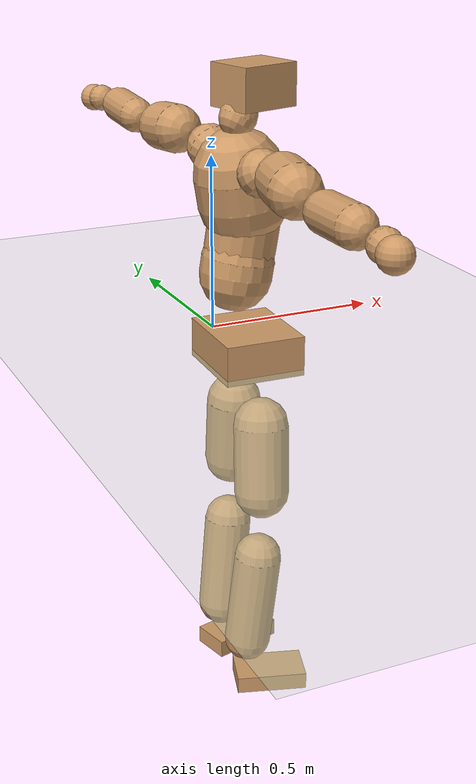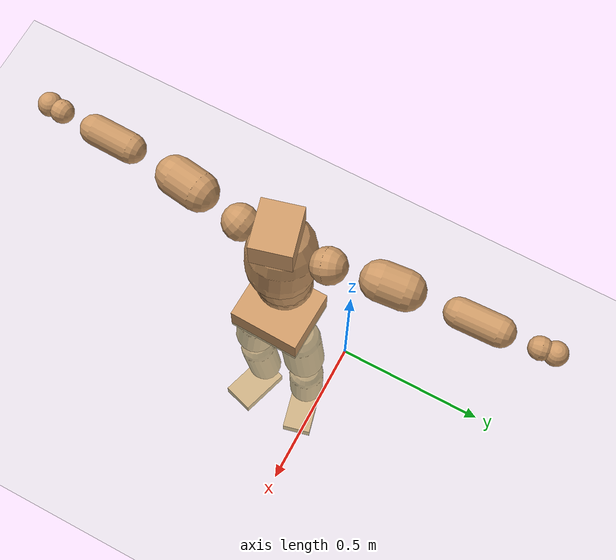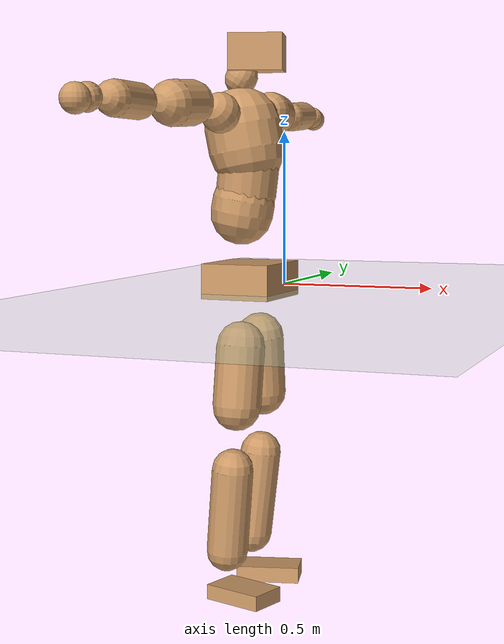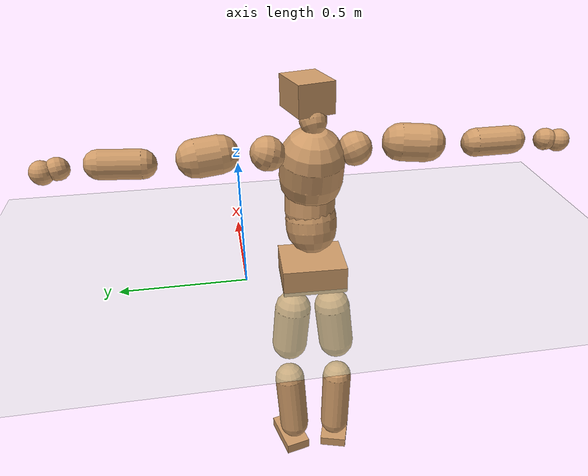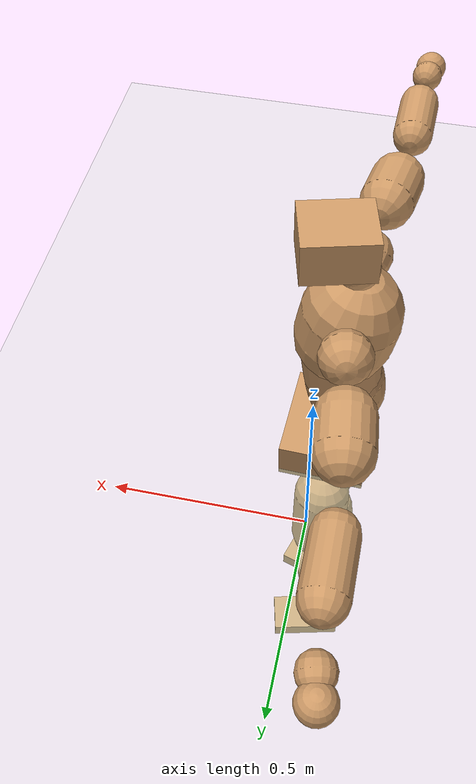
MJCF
<mujoco model="humanoid">
  <compiler coordinate="local" angle="radian"/>
  <default>
    <joint damping="0.0" armature="0.01" stiffness="0.0" limited="true"/>
    <geom conaffinity="1" condim="3" contype="7" margin="0.001" rgba="0.8 0.6 .4 1"/>
  </default>
  <asset>
    <texture type="skybox" builtin="gradient" rgb1=".4 .5 .6" rgb2="0 0 0" width="100" height="100"/>
    <texture builtin="flat" height="1278" mark="cross" markrgb="1 1 1" name="texgeom" random="0.01" rgb1="0.8 0.6 0.4" rgb2="0.8 0.6 0.4" type="cube" width="127"/>
    <texture builtin="checker" height="100" name="texplane" rgb1="0 0 0" rgb2="0.8 0.8 0.8" type="2d" width="100"/>
    <material name="MatPlane" reflectance="0.5" shininess="1" specular="1" texrepeat="60 60" texture="texplane"/>
    <material name="geom" texture="texgeom" texuniform="true"/>
  </asset>
  <worldbody>
    <light cutoff="100" diffuse="1 1 1" dir="-0 0 -1.3" directional="true" exponent="1" pos="0 0 1.3" specular=".1 .1 .1"/>
    <geom conaffinity="1" condim="3" name="floor" pos="0 0 0" rgba="0.8 0.9 0.8 1" size="100 100 .2" type="plane" material="MatPlane"/>
    <body name="Pelvis" pos="-0.0018 -0.2655 0.0444">
      <freejoint name="Pelvis"/>
      <geom type="box" contype="1" conaffinity="1" density="5359.375419" pos="-0.0127 0.0004 -0.0084" size="0.1101 0.1268 0.0544" quat="0.9999 0.0000 0.0000 -0.0157" name="Pelvis"/>
      <body name="L_Hip" pos="-0.0141 0.0723 -0.0922">
        <joint name="L_Hip_x" type="hinge" pos="0 0 0" axis="1 0 0" stiffness="1600" damping="160" armature="0.02" range="-180.0000 180.0000"/>
        <joint name="L_Hip_y" type="hinge" pos="0 0 0" axis="0 1 0" stiffness="1600" damping="160" armature="0.02" range="-180.0000 180.0000"/>
        <joint name="L_Hip_z" type="hinge" pos="0 0 0" axis="0 0 1" stiffness="1600" damping="160" armature="0.02" range="-180.0000 180.0000"/>
        <geom type="capsule" contype="1" conaffinity="1" density="2040.816327" size="0.0752" fromto="0.0004 0.0105 -0.1047 0.0012 0.0288 -0.2878" name="L_Hip"/>
        <body name="L_Knee" pos="0.0016 0.0392 -0.3924">
          <joint name="L_Knee_x" type="hinge" pos="0 0 0" axis="1 0 0" stiffness="1600" damping="160" armature="0.02" range="-180.0000 180.0000"/>
          <joint name="L_Knee_y" type="hinge" pos="0 0 0" axis="0 1 0" stiffness="1600" damping="160" armature="0.02" range="-180.0000 180.0000"/>
          <joint name="L_Knee_z" type="hinge" pos="0 0 0" axis="0 0 1" stiffness="1600" damping="160" armature="0.02" range="-180.0000 180.0000"/>
          <geom type="capsule" contype="1" conaffinity="1" density="1234.567901" size="0.0656" fromto="-0.0097 -0.0041 -0.0950 -0.0371 -0.0158 -0.3639" name="L_Knee"/>
          <body name="L_Ankle" pos="-0.0468 -0.02 -0.4589">
            <joint name="L_Ankle_x" type="hinge" pos="0 0 0" axis="1 0 0" stiffness="1600" damping="160" armature="0.02" range="-180.0000 180.0000"/>
            <joint name="L_Ankle_y" type="hinge" pos="0 0 0" axis="0 1 0" stiffness="1600" damping="160" armature="0.02" range="-180.0000 180.0000"/>
            <joint name="L_Ankle_z" type="hinge" pos="0 0 0" axis="0 0 1" stiffness="1600" damping="160" armature="0.02" range="-180.0000 180.0000"/>
            <geom type="box" contype="1" conaffinity="1" density="999.999952" pos="0.0666 0.0161 -0.0317" size="0.1008 0.0548 0.025" quat="0.9929 0.0000 0.0000 0.1187" name="L_Ankle"/>
            <body name="L_Toe" pos="0.1332 0.0323 -0.0635">
              <joint name="L_Toe_x" type="hinge" pos="0 0 0" axis="1 0 0" stiffness="1000" damping="100" armature="0.02" range="-180.0000 180.0000"/>
              <joint name="L_Toe_y" type="hinge" pos="0 0 0" axis="0 1 0" stiffness="1000" damping="100" armature="0.02" range="-180.0000 180.0000"/>
              <joint name="L_Toe_z" type="hinge" pos="0 0 0" axis="0 0 1" stiffness="1000" damping="100" armature="0.02" range="-180.0000 180.0000"/>
              <geom type="box" contype="1" conaffinity="1" density="8934878.86598" pos="0.0000 0.0000 0.0307" size="0.0011 0.0027 0.0012" quat="0.9923 0.0000 0.0000 0.1239" name="L_Toe"/>
            </body>
          </body>
        </body>
      </body>
      <body name="R_Hip" pos="-0.0079 -0.0749 -0.1012">
        <joint name="R_Hip_x" type="hinge" pos="0 0 0" axis="1 0 0" stiffness="1600" damping="160" armature="0.02" range="-180.0000 180.0000"/>
        <joint name="R_Hip_y" type="hinge" pos="0 0 0" axis="0 1 0" stiffness="1600" damping="160" armature="0.02" range="-180.0000 180.0000"/>
        <joint name="R_Hip_z" type="hinge" pos="0 0 0" axis="0 0 1" stiffness="1600" damping="160" armature="0.02" range="-180.0000 180.0000"/>
        <geom type="capsule" contype="1" conaffinity="1" density="2040.816327" size="0.075" fromto="-0.0034 -0.0107 -0.1044 -0.0094 -0.0301 -0.2931" name="R_Hip"/>
        <body name="R_Knee" pos="-0.0128 -0.0408 -0.3975">
          <joint name="R_Knee_x" type="hinge" pos="0 0 0" axis="1 0 0" stiffness="1600" damping="160" armature="0.02" range="-180.0000 180.0000"/>
          <joint name="R_Knee_y" type="hinge" pos="0 0 0" axis="0 1 0" stiffness="1600" damping="160" armature="0.02" range="-180.0000 180.0000"/>
          <joint name="R_Knee_z" type="hinge" pos="0 0 0" axis="0 0 1" stiffness="1600" damping="160" armature="0.02" range="-180.0000 180.0000"/>
          <geom type="capsule" contype="1" conaffinity="1" density="1234.567901" size="0.0648" fromto="-0.0090 0.0048 -0.0942 -0.0343 0.0182 -0.3584" name="R_Knee"/>
          <body name="R_Ankle" pos="-0.0434 0.023 -0.4526">
            <joint name="R_Ankle_x" type="hinge" pos="0 0 0" axis="1 0 0" stiffness="1600" damping="160" armature="0.02" range="-180.0000 180.0000"/>
            <joint name="R_Ankle_y" type="hinge" pos="0 0 0" axis="0 1 0" stiffness="1600" damping="160" armature="0.02" range="-180.0000 180.0000"/>
            <joint name="R_Ankle_z" type="hinge" pos="0 0 0" axis="0 0 1" stiffness="1600" damping="160" armature="0.02" range="-180.0000 180.0000"/>
            <geom type="box" contype="1" conaffinity="1" density="1000.000001" pos="0.0710 -0.0218 -0.0318" size="0.0981 0.0602 0.0236" quat="0.9889 0.0000 0.0000 -0.1486" name="R_Ankle"/>
            <body name="R_Toe" pos="0.1419 -0.0436 -0.0635">
              <joint name="R_Toe_x" type="hinge" pos="0 0 0" axis="1 0 0" stiffness="1000" damping="100" armature="0.02" range="-180.0000 180.0000"/>
              <joint name="R_Toe_y" type="hinge" pos="0 0 0" axis="0 1 0" stiffness="1000" damping="100" armature="0.02" range="-180.0000 180.0000"/>
              <joint name="R_Toe_z" type="hinge" pos="0 0 0" axis="0 0 1" stiffness="1000" damping="100" armature="0.02" range="-180.0000 180.0000"/>
              <geom type="box" contype="1" conaffinity="1" density="7939180.615625" pos="0.0000 0.0000 0.0336" size="0.0012 0.0029 0.0013" quat="0.9901 0.0000 0.0000 -0.1404" name="R_Toe"/>
            </body>
          </body>
        </body>
      </body>
      <body name="Torso" pos="-0.0543 0.005 0.1427">
        <joint name="Torso_x" type="hinge" pos="0 0 0" axis="1 0 0" stiffness="2000" damping="200" armature="0.02" range="-180.0000 180.0000"/>
        <joint name="Torso_y" type="hinge" pos="0 0 0" axis="0 1 0" stiffness="2000" damping="200" armature="0.02" range="-180.0000 180.0000"/>
        <joint name="Torso_z" type="hinge" pos="0 0 0" axis="0 0 1" stiffness="2000" damping="200" armature="0.02" range="-180.0000 180.0000"/>
        <geom type="capsule" contype="1" conaffinity="1" density="2040.816327" size="0.0975" fromto="0.0178 0.0028 0.0958 0.0100 0.0016 0.0538" name="Torso"/>
        <body name="Spine" pos="0.0278 0.0044 0.1495">
          <joint name="Spine_x" type="hinge" pos="0 0 0" axis="1 0 0" stiffness="2000" damping="200" armature="0.02" range="-180.0000 180.0000"/>
          <joint name="Spine_y" type="hinge" pos="0 0 0" axis="0 1 0" stiffness="2000" damping="200" armature="0.02" range="-180.0000 180.0000"/>
          <joint name="Spine_z" type="hinge" pos="0 0 0" axis="0 0 1" stiffness="2000" damping="200" armature="0.02" range="-180.0000 180.0000"/>
          <geom type="capsule" contype="1" conaffinity="1" density="2040.816327" size="0.0948" fromto="0.0133 -0.0051 0.0937 -0.0046 0.0018 -0.0329" name="Spine"/>
          <body name="Chest" pos="0.0086 -0.0033 0.0609">
            <joint name="Chest_x" type="hinge" pos="0 0 0" axis="1 0 0" stiffness="2000" damping="200" armature="0.02" range="-180.0000 180.0000"/>
            <joint name="Chest_y" type="hinge" pos="0 0 0" axis="0 1 0" stiffness="2000" damping="200" armature="0.02" range="-180.0000 180.0000"/>
            <joint name="Chest_z" type="hinge" pos="0 0 0" axis="0 0 1" stiffness="2000" damping="200" armature="0.02" range="-180.0000 180.0000"/>
            <geom type="capsule" contype="1" conaffinity="1" density="2040.816327" size="0.118" fromto="-0.0210 -0.0051 0.1160 -0.0073 -0.0018 0.0406" name="Chest"/>
            <body name="Neck" pos="-0.0457 -0.0124 0.2227">
              <joint name="Neck_x" type="hinge" pos="0 0 0" axis="1 0 0" stiffness="1000" damping="100" armature="0.02" range="-180.0000 180.0000"/>
              <joint name="Neck_y" type="hinge" pos="0 0 0" axis="0 1 0" stiffness="1000" damping="100" armature="0.02" range="-180.0000 180.0000"/>
              <joint name="Neck_z" type="hinge" pos="0 0 0" axis="0 0 1" stiffness="1000" damping="100" armature="0.02" range="-180.0000 180.0000"/>
              <geom type="capsule" contype="1" conaffinity="1" density="1000" size="0.0489" fromto="0.0257 0.0060 0.0412 0.0206 0.0048 0.0329" name="Neck"/>
              <body name="Head" pos="0.0463 0.0108 0.0741">
                <joint name="Head_x" type="hinge" pos="0 0 0" axis="1 0 0" stiffness="1000" damping="100" armature="0.02" range="-180.0000 180.0000"/>
                <joint name="Head_y" type="hinge" pos="0 0 0" axis="0 1 0" stiffness="1000" damping="100" armature="0.02" range="-180.0000 180.0000"/>
                <joint name="Head_z" type="hinge" pos="0 0 0" axis="0 0 1" stiffness="1000" damping="100" armature="0.02" range="-180.0000 180.0000"/>
                <geom type="box" contype="1" conaffinity="1" density="2250.000138" pos="0.0242 0.0064 0.0381" size="0.0833 0.0688 0.0557" quat="0.9916 0.0000 0.0000 0.1290" name="Head"/>
              </body>
            </body>
            <body name="L_Thorax" pos="-0.0162 0.0847 0.1254">
              <joint name="L_Thorax_x" type="hinge" pos="0 0 0" axis="1 0 0" stiffness="1000" damping="100" armature="0.02" range="-180.0000 180.0000"/>
              <joint name="L_Thorax_y" type="hinge" pos="0 0 0" axis="0 1 0" stiffness="1000" damping="100" armature="0.02" range="-180.0000 180.0000"/>
              <joint name="L_Thorax_z" type="hinge" pos="0 0 0" axis="0 0 1" stiffness="1000" damping="100" armature="0.02" range="-180.0000 180.0000"/>
              <geom type="capsule" contype="1" conaffinity="1" density="1000" size="0.0618" fromto="-0.0131 0.0691 0.0249 -0.0134 0.0709 0.0256" name="L_Thorax"/>
              <body name="L_Shoulder" pos="-0.0265 0.14 0.0505">
                <joint name="L_Shoulder_x" type="hinge" pos="0 0 0" axis="1 0 0" stiffness="1000" damping="100" armature="0.02" range="-720.0000 720.0000"/>
                <joint name="L_Shoulder_y" type="hinge" pos="0 0 0" axis="0 1 0" stiffness="1000" damping="100" armature="0.02" range="-720.0000 720.0000"/>
                <joint name="L_Shoulder_z" type="hinge" pos="0 0 0" axis="0 0 1" stiffness="1000" damping="100" armature="0.02" range="-720.0000 720.0000"/>
                <geom type="capsule" contype="1" conaffinity="1" density="1000" size="0.0669" fromto="-0.0115 0.0960 -0.0064 -0.0213 0.1768 -0.0119" name="L_Shoulder"/>
                <body name="L_Elbow" pos="-0.0328 0.2728 -0.0183">
                  <joint name="L_Elbow_x" type="hinge" pos="0 0 0" axis="1 0 0" stiffness="1000" damping="100" armature="0.02" range="-720.0000 720.0000"/>
                  <joint name="L_Elbow_y" type="hinge" pos="0 0 0" axis="0 1 0" stiffness="1000" damping="100" armature="0.02" range="-720.0000 720.0000"/>
                  <joint name="L_Elbow_z" type="hinge" pos="0 0 0" axis="0 0 1" stiffness="1000" damping="100" armature="0.02" range="-720.0000 720.0000"/>
                  <geom type="capsule" contype="1" conaffinity="1" density="1000" size="0.0498" fromto="-0.0010 0.0796 0.0049 -0.0026 0.2154 0.0132" name="L_Elbow"/>
                  <body name="L_Wrist" pos="-0.0036 0.2951 0.0181">
                    <joint name="L_Wrist_x" type="hinge" pos="0 0 0" axis="1 0 0" stiffness="600" damping="60" armature="0.02" range="-180.0000 180.0000"/>
                    <joint name="L_Wrist_y" type="hinge" pos="0 0 0" axis="0 1 0" stiffness="600" damping="60" armature="0.02" range="-180.0000 180.0000"/>
                    <joint name="L_Wrist_z" type="hinge" pos="0 0 0" axis="0 0 1" stiffness="600" damping="60" armature="0.02" range="-180.0000 180.0000"/>
                    <geom type="capsule" contype="1" conaffinity="1" density="1000" size="0.0384" fromto="-0.0086 0.0474 -0.0059 -0.0090 0.0493 -0.0061" name="L_Wrist"/>
                    <body name="L_Hand" pos="-0.0176 0.0967 -0.012">
                      <joint name="L_Hand_x" type="hinge" pos="0 0 0" axis="1 0 0" stiffness="600" damping="60" armature="0.02" range="-180.0000 180.0000"/>
                      <joint name="L_Hand_y" type="hinge" pos="0 0 0" axis="0 1 0" stiffness="600" damping="60" armature="0.02" range="-180.0000 180.0000"/>
                      <joint name="L_Hand_z" type="hinge" pos="0 0 0" axis="0 0 1" stiffness="600" damping="60" armature="0.02" range="-180.0000 180.0000"/>
                      <geom type="sphere" contype="1" conaffinity="1" density="1000" size="0.0397" pos="0.0000 0.0000 0.0000" name="L_Hand"/>
                    </body>
                  </body>
                </body>
              </body>
            </body>
            <body name="R_Thorax" pos="-0.0231 -0.0931 0.1217">
              <joint name="R_Thorax_x" type="hinge" pos="0 0 0" axis="1 0 0" stiffness="1000" damping="100" armature="0.02" range="-180.0000 180.0000"/>
              <joint name="R_Thorax_y" type="hinge" pos="0 0 0" axis="0 1 0" stiffness="1000" damping="100" armature="0.02" range="-180.0000 180.0000"/>
              <joint name="R_Thorax_z" type="hinge" pos="0 0 0" axis="0 0 1" stiffness="1000" damping="100" armature="0.02" range="-180.0000 180.0000"/>
              <geom type="capsule" contype="1" conaffinity="1" density="1000" size="0.0611" fromto="-0.0067 -0.0637 0.0261 -0.0069 -0.0655 0.0269" name="R_Thorax"/>
              <body name="R_Shoulder" pos="-0.0136 -0.1292 0.053">
                <joint name="R_Shoulder_x" type="hinge" pos="0 0 0" axis="1 0 0" stiffness="1000" damping="100" armature="0.02" range="-720.0000 720.0000"/>
                <joint name="R_Shoulder_y" type="hinge" pos="0 0 0" axis="0 1 0" stiffness="1000" damping="100" armature="0.02" range="-720.0000 720.0000"/>
                <joint name="R_Shoulder_z" type="hinge" pos="0 0 0" axis="0 0 1" stiffness="1000" damping="100" armature="0.02" range="-720.0000 720.0000"/>
                <geom type="capsule" contype="1" conaffinity="1" density="1000" size="0.0671" fromto="-0.0153 -0.0958 -0.0046 -0.0300 -0.1875 -0.0090" name="R_Shoulder"/>
                <body name="R_Elbow" pos="-0.0453 -0.2833 -0.0136">
                  <joint name="R_Elbow_x" type="hinge" pos="0 0 0" axis="1 0 0" stiffness="1000" damping="100" armature="0.02" range="-720.0000 720.0000"/>
                  <joint name="R_Elbow_y" type="hinge" pos="0 0 0" axis="0 1 0" stiffness="1000" damping="100" armature="0.02" range="-720.0000 720.0000"/>
                  <joint name="R_Elbow_z" type="hinge" pos="0 0 0" axis="0 0 1" stiffness="1000" damping="100" armature="0.02" range="-720.0000 720.0000"/>
                  <geom type="capsule" contype="1" conaffinity="1" density="1000" size="0.0501" fromto="-0.0016 -0.0801 0.0013 -0.0042 -0.2141 0.0035" name="R_Elbow"/>
                  <body name="R_Wrist" pos="-0.0057 -0.2942 0.0049">
                    <joint name="R_Wrist_x" type="hinge" pos="0 0 0" axis="1 0 0" stiffness="600" damping="60" armature="0.02" range="-180.0000 180.0000"/>
                    <joint name="R_Wrist_y" type="hinge" pos="0 0 0" axis="0 1 0" stiffness="600" damping="60" armature="0.02" range="-180.0000 180.0000"/>
                    <joint name="R_Wrist_z" type="hinge" pos="0 0 0" axis="0 0 1" stiffness="600" damping="60" armature="0.02" range="-180.0000 180.0000"/>
                    <geom type="capsule" contype="1" conaffinity="1" density="1000" size="0.0392" fromto="-0.0055 -0.0487 -0.0049 -0.0057 -0.0506 -0.0051" name="R_Wrist"/>
                    <body name="R_Hand" pos="-0.0112 -0.0993 -0.0101">
                      <joint name="R_Hand_x" type="hinge" pos="0 0 0" axis="1 0 0" stiffness="600" damping="60" armature="0.02" range="-180.0000 180.0000"/>
                      <joint name="R_Hand_y" type="hinge" pos="0 0 0" axis="0 1 0" stiffness="600" damping="60" armature="0.02" range="-180.0000 180.0000"/>
                      <joint name="R_Hand_z" type="hinge" pos="0 0 0" axis="0 0 1" stiffness="600" damping="60" armature="0.02" range="-180.0000 180.0000"/>
                      <geom type="sphere" contype="1" conaffinity="1" density="1000" size="0.0404" pos="0.0000 0.0000 0.0000" name="R_Hand"/>
                    </body>
                  </body>
                </body>
              </body>
            </body>
          </body>
        </body>
      </body>
    </body>
  </worldbody>
  <actuator>
    <motor name="L_Hip_x" joint="L_Hip_x" gear="500"/>
    <motor name="L_Hip_y" joint="L_Hip_y" gear="500"/>
    <motor name="L_Hip_z" joint="L_Hip_z" gear="500"/>
    <motor name="L_Knee_x" joint="L_Knee_x" gear="500"/>
    <motor name="L_Knee_y" joint="L_Knee_y" gear="500"/>
    <motor name="L_Knee_z" joint="L_Knee_z" gear="500"/>
    <motor name="L_Ankle_x" joint="L_Ankle_x" gear="500"/>
    <motor name="L_Ankle_y" joint="L_Ankle_y" gear="500"/>
    <motor name="L_Ankle_z" joint="L_Ankle_z" gear="500"/>
    <motor name="L_Toe_x" joint="L_Toe_x" gear="500"/>
    <motor name="L_Toe_y" joint="L_Toe_y" gear="500"/>
    <motor name="L_Toe_z" joint="L_Toe_z" gear="500"/>
    <motor name="R_Hip_x" joint="R_Hip_x" gear="500"/>
    <motor name="R_Hip_y" joint="R_Hip_y" gear="500"/>
    <motor name="R_Hip_z" joint="R_Hip_z" gear="500"/>
    <motor name="R_Knee_x" joint="R_Knee_x" gear="500"/>
    <motor name="R_Knee_y" joint="R_Knee_y" gear="500"/>
    <motor name="R_Knee_z" joint="R_Knee_z" gear="500"/>
    <motor name="R_Ankle_x" joint="R_Ankle_x" gear="500"/>
    <motor name="R_Ankle_y" joint="R_Ankle_y" gear="500"/>
    <motor name="R_Ankle_z" joint="R_Ankle_z" gear="500"/>
    <motor name="R_Toe_x" joint="R_Toe_x" gear="500"/>
    <motor name="R_Toe_y" joint="R_Toe_y" gear="500"/>
    <motor name="R_Toe_z" joint="R_Toe_z" gear="500"/>
    <motor name="Torso_x" joint="Torso_x" gear="500"/>
    <motor name="Torso_y" joint="Torso_y" gear="500"/>
    <motor name="Torso_z" joint="Torso_z" gear="500"/>
    <motor name="Spine_x" joint="Spine_x" gear="500"/>
    <motor name="Spine_y" joint="Spine_y" gear="500"/>
    <motor name="Spine_z" joint="Spine_z" gear="500"/>
    <motor name="Chest_x" joint="Chest_x" gear="500"/>
    <motor name="Chest_y" joint="Chest_y" gear="500"/>
    <motor name="Chest_z" joint="Chest_z" gear="500"/>
    <motor name="Neck_x" joint="Neck_x" gear="500"/>
    <motor name="Neck_y" joint="Neck_y" gear="500"/>
    <motor name="Neck_z" joint="Neck_z" gear="500"/>
    <motor name="Head_x" joint="Head_x" gear="500"/>
    <motor name="Head_y" joint="Head_y" gear="500"/>
    <motor name="Head_z" joint="Head_z" gear="500"/>
    <motor name="L_Thorax_x" joint="L_Thorax_x" gear="500"/>
    <motor name="L_Thorax_y" joint="L_Thorax_y" gear="500"/>
    <motor name="L_Thorax_z" joint="L_Thorax_z" gear="500"/>
    <motor name="L_Shoulder_x" joint="L_Shoulder_x" gear="500"/>
    <motor name="L_Shoulder_y" joint="L_Shoulder_y" gear="500"/>
    <motor name="L_Shoulder_z" joint="L_Shoulder_z" gear="500"/>
    <motor name="L_Elbow_x" joint="L_Elbow_x" gear="500"/>
    <motor name="L_Elbow_y" joint="L_Elbow_y" gear="500"/>
    <motor name="L_Elbow_z" joint="L_Elbow_z" gear="500"/>
    <motor name="L_Wrist_x" joint="L_Wrist_x" gear="500"/>
    <motor name="L_Wrist_y" joint="L_Wrist_y" gear="500"/>
    <motor name="L_Wrist_z" joint="L_Wrist_z" gear="500"/>
    <motor name="L_Hand_x" joint="L_Hand_x" gear="500"/>
    <motor name="L_Hand_y" joint="L_Hand_y" gear="500"/>
    <motor name="L_Hand_z" joint="L_Hand_z" gear="500"/>
    <motor name="R_Thorax_x" joint="R_Thorax_x" gear="500"/>
    <motor name="R_Thorax_y" joint="R_Thorax_y" gear="500"/>
    <motor name="R_Thorax_z" joint="R_Thorax_z" gear="500"/>
    <motor name="R_Shoulder_x" joint="R_Shoulder_x" gear="500"/>
    <motor name="R_Shoulder_y" joint="R_Shoulder_y" gear="500"/>
    <motor name="R_Shoulder_z" joint="R_Shoulder_z" gear="500"/>
    <motor name="R_Elbow_x" joint="R_Elbow_x" gear="500"/>
    <motor name="R_Elbow_y" joint="R_Elbow_y" gear="500"/>
    <motor name="R_Elbow_z" joint="R_Elbow_z" gear="500"/>
    <motor name="R_Wrist_x" joint="R_Wrist_x" gear="500"/>
    <motor name="R_Wrist_y" joint="R_Wrist_y" gear="500"/>
    <motor name="R_Wrist_z" joint="R_Wrist_z" gear="500"/>
    <motor name="R_Hand_x" joint="R_Hand_x" gear="500"/>
    <motor name="R_Hand_y" joint="R_Hand_y" gear="500"/>
    <motor name="R_Hand_z" joint="R_Hand_z" gear="500"/>
  </actuator>
  <contact>
    <exclude body1="Torso" body2="Chest"/>
    <exclude body1="Head" body2="Chest"/>
    <exclude body1="R_Knee" body2="R_Toe"/>
    <exclude body1="R_Knee" body2="L_Ankle"/>
    <exclude body1="R_Knee" body2="L_Toe"/>
    <exclude body1="L_Knee" body2="L_Toe"/>
    <exclude body1="L_Knee" body2="R_Ankle"/>
    <exclude body1="L_Knee" body2="R_Toe"/>
    <exclude body1="L_Shoulder" body2="Chest"/>
    <exclude body1="R_Shoulder" body2="Chest"/>
  </contact>
  <sensor/>
  <size njmax="700" nconmax="700"/>
</mujoco>
